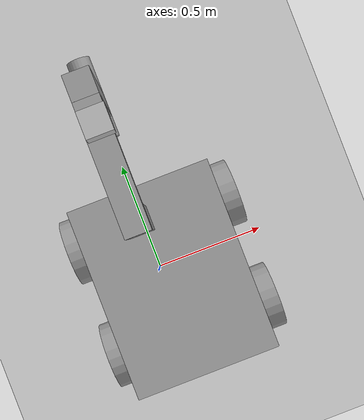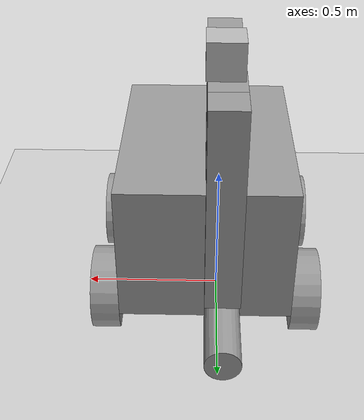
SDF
<?xml version="1.0" ?>
<!--
  You can echo lidar messages using:
    gz topic -e -t /lidar
-->
<sdf version="1.7">
  <world name="diff_drive_robot_world">
    <physics name="1ms" type="ignored">
      <max_step_size>0.001</max_step_size>
      <real_time_factor>1.0</real_time_factor>
    </physics>
    <plugin
      filename="gz-sim-physics-system"
      name="gz::sim::systems::Physics">
    </plugin>
    <plugin
      filename="gz-sim-sensors-system"
      name="gz::sim::systems::Sensors">
      <render_engine>ogre2</render_engine>
    </plugin>
    <plugin
      filename="gz-sim-scene-broadcaster-system"
      name="gz::sim::systems::SceneBroadcaster">
    </plugin>

    <gui fullscreen="0">

      <!-- 3D scene -->
      <plugin filename="MinimalScene" name="3D View">
        <gz-gui>
          <title>3D View</title>
          <property type="bool" key="showTitleBar">false</property>
          <property type="string" key="state">docked</property>
        </gz-gui>

        <engine>ogre2</engine>
        <scene>scene</scene>
        <ambient_light>0.4 0.4 0.4</ambient_light>
        <background_color>0.8 0.8 0.8</background_color>
        <camera_pose>-6 0 6 0 0.5 0</camera_pose>
      </plugin>

      <!-- Plugins that add functionality to the scene -->
      <plugin filename="EntityContextMenuPlugin" name="Entity context menu">
        <gz-gui>
          <property key="state" type="string">floating</property>
          <property key="width" type="double">5</property>
          <property key="height" type="double">5</property>
          <property key="showTitleBar" type="bool">false</property>
        </gz-gui>
      </plugin>
      <plugin filename="GzSceneManager" name="Scene Manager">
        <gz-gui>
          <property key="resizable" type="bool">false</property>
          <property key="width" type="double">5</property>
          <property key="height" type="double">5</property>
          <property key="state" type="string">floating</property>
          <property key="showTitleBar" type="bool">false</property>
        </gz-gui>
      </plugin>
      <plugin filename="InteractiveViewControl" name="Interactive view control">
        <gz-gui>
          <property key="resizable" type="bool">false</property>
          <property key="width" type="double">5</property>
          <property key="height" type="double">5</property>
          <property key="state" type="string">floating</property>
          <property key="showTitleBar" type="bool">false</property>
        </gz-gui>
      </plugin>
      <plugin filename="CameraTracking" name="Camera Tracking">
        <gz-gui>
          <property key="resizable" type="bool">false</property>
          <property key="width" type="double">5</property>
          <property key="height" type="double">5</property>
          <property key="state" type="string">floating</property>
          <property key="showTitleBar" type="bool">false</property>
        </gz-gui>
      </plugin>
      <!-- World control -->
      <plugin filename="WorldControl" name="World control">
        <gz-gui>
          <title>World control</title>
          <property type="bool" key="showTitleBar">false</property>
          <property type="bool" key="resizable">false</property>
          <property type="double" key="height">72</property>
          <property type="double" key="z">1</property>

          <property type="string" key="state">floating</property>
          <anchors target="3D View">
            <line own="left" target="left"/>
            <line own="bottom" target="bottom"/>
          </anchors>
        </gz-gui>

        <play_pause>true</play_pause>
        <step>true</step>
        <start_paused>true</start_paused>
        <use_event>true</use_event>

      </plugin>

      <!-- World statistics -->
      <plugin filename="WorldStats" name="World stats">
        <gz-gui>
          <title>World stats</title>
          <property type="bool" key="showTitleBar">false</property>
          <property type="bool" key="resizable">false</property>
          <property type="double" key="height">110</property>
          <property type="double" key="width">290</property>
          <property type="double" key="z">1</property>

          <property type="string" key="state">floating</property>
          <anchors target="3D View">
            <line own="right" target="right"/>
            <line own="bottom" target="bottom"/>
          </anchors>
        </gz-gui>

        <sim_time>true</sim_time>
        <real_time>true</real_time>
        <real_time_factor>true</real_time_factor>
        <iterations>true</iterations>
      </plugin>

      <!-- Inspector -->
      <plugin filename="ComponentInspector" name="Component inspector">
        <gz-gui>
          <property type="string" key="state">docked</property>
        </gz-gui>
      </plugin>

      <!-- Entity tree -->
      <plugin filename="EntityTree" name="Entity tree">
        <gz-gui>
          <property type="string" key="state">docked</property>
        </gz-gui>
      </plugin>
    </gui>

    <light type="directional" name="sun">
      <cast_shadows>true</cast_shadows>
      <pose>0 0 10 0 0 0</pose>
      <diffuse>0.8 0.8 0.8 1</diffuse>
      <specular>0.2 0.2 0.2 1</specular>
      <attenuation>
        <range>1000</range>
        <constant>0.9</constant>
        <linear>0.01</linear>
        <quadratic>0.001</quadratic>
      </attenuation>
      <direction>-0.5 0.1 -0.9</direction>
    </light>

    <model name="ground_plane">
      <static>true</static>
      <link name="link">
        <collision name="collision">
          <geometry>
            <box>
              <size>20 20 0.1</size>
            </box>
          </geometry>
        </collision>
        <visual name="visual">
          <geometry>
            <box>
              <size>20 20 0.1</size>
            </box>
          </geometry>
          <material>
            <ambient>0.8 0.8 0.8 1</ambient>
            <diffuse>0.8 0.8 0.8 1</diffuse>
            <specular>0.8 0.8 0.8 1</specular>
          </material>
        </visual>
      </link>
    </model>

    <model name='diff_drive_robot_complete'>
      <link name='link_0'>
        <inertial>
          <mass>2</mass>
          <inertia>
            <ixx>0.148333</ixx>
            <ixy>0</ixy>
            <ixz>0</ixz>
            <iyy>0.101667</iyy>
            <iyz>0</iyz>
            <izz>0.166667</izz>
          </inertia>
          <pose>0 0 0 0 -0 0</pose>
        </inertial>
        <pose>0 0 0.39 0 -0 0</pose>
        <gravity>1</gravity>
        <self_collide>0</self_collide>
        <kinematic>0</kinematic>
        <enable_wind>0</enable_wind>
        <visual name='visual'>
          <pose>0 0 0 0 -0 0</pose>
          <geometry>
            <box>
              <size>0.6 0.8 0.5</size>
            </box>
          </geometry>
          <material>
            <lighting>1</lighting>
            <script>
              <uri>file://media/materials/scripts/gazebo.material</uri>
              <name>Gazebo/Grey</name>
            </script>
            <shader type='pixel'>
              <normal_map>__default__</normal_map>
            </shader>
            <ambient>0.3 0.3 0.3 1</ambient>
            <diffuse>0.7 0.7 0.7 1</diffuse>
            <specular>0.01 0.01 0.01 1</specular>
            <emissive>0 0 0 1</emissive>
          </material>
          <transparency>0</transparency>
          <cast_shadows>1</cast_shadows>
        </visual>
        <collision name='collision'>
          <laser_retro>0</laser_retro>
          <max_contacts>10</max_contacts>
          <pose>0 0 0 0 -0 0</pose>
          <geometry>
            <box>
              <size>0.6 0.8 0.5</size>
            </box>
          </geometry>
          <surface>
            <friction>
              <ode>
                <mu>1</mu>
                <mu2>1</mu2>
                <fdir1>0 0 0</fdir1>
                <slip1>0</slip1>
                <slip2>0</slip2>
              </ode>
              <torsional>
                <coefficient>1</coefficient>
                <patch_radius>0</patch_radius>
                <surface_radius>0</surface_radius>
                <use_patch_radius>1</use_patch_radius>
                <ode>
                  <slip>0</slip>
                </ode>
              </torsional>
            </friction>
            <bounce>
              <restitution_coefficient>0</restitution_coefficient>
              <threshold>1e+06</threshold>
            </bounce>
            <contact>
              <collide_without_contact>0</collide_without_contact>
              <collide_without_contact_bitmask>1</collide_without_contact_bitmask>
              <collide_bitmask>1</collide_bitmask>
              <ode>
                <soft_cfm>0</soft_cfm>
                <soft_erp>0.2</soft_erp>
                <kp>1e+13</kp>
                <kd>1</kd>
                <max_vel>0.01</max_vel>
                <min_depth>0</min_depth>
              </ode>
              <bullet>
                <split_impulse>1</split_impulse>
                <split_impulse_penetration_threshold>-0.01</split_impulse_penetration_threshold>
                <soft_cfm>0</soft_cfm>
                <soft_erp>0.2</soft_erp>
                <kp>1e+13</kp>
                <kd>1</kd>
              </bullet>
            </contact>
          </surface>
        </collision>
      </link>
      <link name='link_0_0'>
        <inertial>
          <mass>1</mass>
          <inertia>
            <ixx>0.166667</ixx>
            <ixy>0</ixy>
            <ixz>0</ixz>
            <iyy>0.166667</iyy>
            <iyz>0</iyz>
            <izz>0.166667</izz>
          </inertia>
          <pose>0 0 0 0 -0 0</pose>
        </inertial>
        <pose>-0.044754 0.260325 0.84 0 0 -0.000943</pose>
        <gravity>1</gravity>
        <self_collide>0</self_collide>
        <kinematic>0</kinematic>
        <enable_wind>0</enable_wind>
        <visual name='visual'>
          <pose>0 0 0 0 -0 0</pose>
          <geometry>
            <box>
              <size>0.1 0.1 0.4</size>
            </box>
          </geometry>
          <material>
            <lighting>1</lighting>
            <script>
              <uri>file://media/materials/scripts/gazebo.material</uri>
              <name>Gazebo/Grey</name>
            </script>
            <shader type='pixel'>
              <normal_map>__default__</normal_map>
            </shader>
            <ambient>0.3 0.3 0.3 1</ambient>
            <diffuse>0.7 0.7 0.7 1</diffuse>
            <specular>0.01 0.01 0.01 1</specular>
            <emissive>0 0 0 1</emissive>
          </material>
          <transparency>0</transparency>
          <cast_shadows>1</cast_shadows>
        </visual>
        <collision name='collision'>
          <laser_retro>0</laser_retro>
          <max_contacts>10</max_contacts>
          <pose>0 0 0 0 -0 0</pose>
          <geometry>
            <box>
              <size>0.1 0.1 0.4</size>
            </box>
          </geometry>
          <surface>
            <friction>
              <ode>
                <mu>1</mu>
                <mu2>1</mu2>
                <fdir1>0 0 0</fdir1>
                <slip1>0</slip1>
                <slip2>0</slip2>
              </ode>
              <torsional>
                <coefficient>1</coefficient>
                <patch_radius>0</patch_radius>
                <surface_radius>0</surface_radius>
                <use_patch_radius>1</use_patch_radius>
                <ode>
                  <slip>0</slip>
                </ode>
              </torsional>
            </friction>
            <bounce>
              <restitution_coefficient>0</restitution_coefficient>
              <threshold>1e+06</threshold>
            </bounce>
            <contact>
              <collide_without_contact>0</collide_without_contact>
              <collide_without_contact_bitmask>1</collide_without_contact_bitmask>
              <collide_bitmask>1</collide_bitmask>
              <ode>
                <soft_cfm>0</soft_cfm>
                <soft_erp>0.2</soft_erp>
                <kp>1e+13</kp>
                <kd>1</kd>
                <max_vel>0.01</max_vel>
                <min_depth>0</min_depth>
              </ode>
              <bullet>
                <split_impulse>1</split_impulse>
                <split_impulse_penetration_threshold>-0.01</split_impulse_penetration_threshold>
                <soft_cfm>0</soft_cfm>
                <soft_erp>0.2</soft_erp>
                <kp>1e+13</kp>
                <kd>1</kd>
              </bullet>
            </contact>
          </surface>
        </collision>
      </link>
      <link name='link_0_0_clone'>
        <inertial>
          <mass>1</mass>
          <inertia>
            <ixx>0.166667</ixx>
            <ixy>0</ixy>
            <ixz>0</ixz>
            <iyy>0.166667</iyy>
            <iyz>0</iyz>
            <izz>0.166667</izz>
          </inertia>
          <pose>0 0 0 0 -0 0</pose>
        </inertial>
        <pose>-0.04433 0.460377 1.09002 1.5707 -0 0</pose>
        <gravity>1</gravity>
        <self_collide>0</self_collide>
        <kinematic>0</kinematic>
        <enable_wind>0</enable_wind>
        <visual name='visual_0'>
          <pose>0 0 0 0 -0 0</pose>
          <geometry>
            <box>
              <size>0.1 0.1 0.5</size>
            </box>
          </geometry>
          <material>
            <lighting>1</lighting>
            <script>
              <uri>file://media/materials/scripts/gazebo.material</uri>
              <name>Gazebo/Grey</name>
            </script>
            <shader type='pixel'>
              <normal_map>__default__</normal_map>
            </shader>
            <ambient>0.3 0.3 0.3 1</ambient>
            <diffuse>0.7 0.7 0.7 1</diffuse>
            <specular>0.01 0.01 0.01 1</specular>
            <emissive>0 0 0 1</emissive>
          </material>
          <transparency>0</transparency>
          <cast_shadows>1</cast_shadows>
        </visual>
        <collision name='collision'>
          <laser_retro>0</laser_retro>
          <max_contacts>10</max_contacts>
          <pose>0 0 0 0 -0 0</pose>
          <geometry>
            <box>
              <size>0.1 0.1 0.5</size>
            </box>
          </geometry>
          <surface>
            <friction>
              <ode>
                <mu>1</mu>
                <mu2>1</mu2>
                <fdir1>0 0 0</fdir1>
                <slip1>0</slip1>
                <slip2>0</slip2>
              </ode>
              <torsional>
                <coefficient>1</coefficient>
                <patch_radius>0</patch_radius>
                <surface_radius>0</surface_radius>
                <use_patch_radius>1</use_patch_radius>
                <ode>
                  <slip>0</slip>
                </ode>
              </torsional>
            </friction>
            <bounce>
              <restitution_coefficient>0</restitution_coefficient>
              <threshold>1e+06</threshold>
            </bounce>
            <contact>
              <collide_without_contact>0</collide_without_contact>
              <collide_without_contact_bitmask>1</collide_without_contact_bitmask>
              <collide_bitmask>1</collide_bitmask>
              <ode>
                <soft_cfm>0</soft_cfm>
                <soft_erp>0.2</soft_erp>
                <kp>1e+13</kp>
                <kd>1</kd>
                <max_vel>0.01</max_vel>
                <min_depth>0</min_depth>
              </ode>
              <bullet>
                <split_impulse>1</split_impulse>
                <split_impulse_penetration_threshold>-0.01</split_impulse_penetration_threshold>
                <soft_cfm>0</soft_cfm>
                <soft_erp>0.2</soft_erp>
                <kp>1e+13</kp>
                <kd>1</kd>
              </bullet>
            </contact>
          </surface>
        </collision>
      </link>
      <link name='link_1'>
        <inertial>
          <mass>1</mass>
          <inertia>
            <ixx>0.166667</ixx>
            <ixy>0</ixy>
            <ixz>0</ixz>
            <iyy>0.166667</iyy>
            <iyz>0</iyz>
            <izz>0.166667</izz>
          </inertia>
          <pose>0 0 0 0 -0 0</pose>
        </inertial>
        <pose>-0.044283 0.760429 0.840048 0 0 -0.000943</pose>
        <gravity>1</gravity>
        <self_collide>0</self_collide>
        <kinematic>0</kinematic>
        <enable_wind>0</enable_wind>
        <visual name='visual'>
          <pose>0 0 0 0 -0 0</pose>
          <geometry>
            <box>
              <size>0.1 0.1 0.6</size>
            </box>
          </geometry>
          <material>
            <lighting>1</lighting>
            <script>
              <uri>file://media/materials/scripts/gazebo.material</uri>
              <name>Gazebo/Grey</name>
            </script>
            <shader type='pixel'>
              <normal_map>__default__</normal_map>
            </shader>
            <ambient>0.3 0.3 0.3 1</ambient>
            <diffuse>0.7 0.7 0.7 1</diffuse>
            <specular>0.01 0.01 0.01 1</specular>
            <emissive>0 0 0 1</emissive>
          </material>
          <transparency>0</transparency>
          <cast_shadows>1</cast_shadows>
        </visual>
        <collision name='collision'>
          <laser_retro>0</laser_retro>
          <max_contacts>10</max_contacts>
          <pose>0 0 0 0 -0 0</pose>
          <geometry>
            <box>
              <size>0.1 0.1 0.6</size>
            </box>
          </geometry>
          <surface>
            <friction>
              <ode>
                <mu>1</mu>
                <mu2>1</mu2>
                <fdir1>0 0 0</fdir1>
                <slip1>0</slip1>
                <slip2>0</slip2>
              </ode>
              <torsional>
                <coefficient>1</coefficient>
                <patch_radius>0</patch_radius>
                <surface_radius>0</surface_radius>
                <use_patch_radius>1</use_patch_radius>
                <ode>
                  <slip>0</slip>
                </ode>
              </torsional>
            </friction>
            <bounce>
              <restitution_coefficient>0</restitution_coefficient>
              <threshold>1e+06</threshold>
            </bounce>
            <contact>
              <collide_without_contact>0</collide_without_contact>
              <collide_without_contact_bitmask>1</collide_without_contact_bitmask>
              <collide_bitmask>1</collide_bitmask>
              <ode>
                <soft_cfm>0</soft_cfm>
                <soft_erp>0.2</soft_erp>
                <kp>1e+13</kp>
                <kd>1</kd>
                <max_vel>0.01</max_vel>
                <min_depth>0</min_depth>
              </ode>
              <bullet>
                <split_impulse>1</split_impulse>
                <split_impulse_penetration_threshold>-0.01</split_impulse_penetration_threshold>
                <soft_cfm>0</soft_cfm>
                <soft_erp>0.2</soft_erp>
                <kp>1e+13</kp>
                <kd>1</kd>
              </bullet>
            </contact>
          </surface>
        </collision>
      </link>
      <link name='link_1_clone'>
        <inertial>
          <mass>1</mass>
          <inertia>
            <ixx>0.145833</ixx>
            <ixy>0</ixy>
            <ixz>0</ixz>
            <iyy>0.145833</iyy>
            <iyz>0</iyz>
            <izz>0.125</izz>
          </inertia>
          <pose>0 0 0 0 -0 0</pose>
        </inertial>
        <pose>0.350029 -0.249995 0.14 1.5707 0 1.5707</pose>
        <gravity>1</gravity>
        <self_collide>0</self_collide>
        <kinematic>0</kinematic>
        <enable_wind>0</enable_wind>
        <visual name='visual'>
          <pose>0 0 0 0 -0 0</pose>
          <geometry>
            <cylinder>
              <radius>0.15</radius>
              <length>0.1</length>
            </cylinder>
          </geometry>
          <material>
            <lighting>1</lighting>
            <script>
              <uri>file://media/materials/scripts/gazebo.material</uri>
              <name>Gazebo/Grey</name>
            </script>
            <shader type='pixel'>
              <normal_map>__default__</normal_map>
            </shader>
            <ambient>0.3 0.3 0.3 1</ambient>
            <diffuse>0.7 0.7 0.7 1</diffuse>
            <specular>0.01 0.01 0.01 1</specular>
            <emissive>0 0 0 1</emissive>
          </material>
          <transparency>0</transparency>
          <cast_shadows>1</cast_shadows>
        </visual>
        <collision name='collision'>
          <laser_retro>0</laser_retro>
          <max_contacts>10</max_contacts>
          <pose>0 0 0 0 -0 0</pose>
          <geometry>
            <cylinder>
              <radius>0.15</radius>
              <length>0.1</length>
            </cylinder>
          </geometry>
          <surface>
            <friction>
              <ode>
                <mu>1</mu>
                <mu2>1</mu2>
                <fdir1>0 0 0</fdir1>
                <slip1>0</slip1>
                <slip2>0</slip2>
              </ode>
              <torsional>
                <coefficient>1</coefficient>
                <patch_radius>0</patch_radius>
                <surface_radius>0</surface_radius>
                <use_patch_radius>1</use_patch_radius>
                <ode>
                  <slip>0</slip>
                </ode>
              </torsional>
            </friction>
            <bounce>
              <restitution_coefficient>0</restitution_coefficient>
              <threshold>1e+06</threshold>
            </bounce>
            <contact>
              <collide_without_contact>0</collide_without_contact>
              <collide_without_contact_bitmask>1</collide_without_contact_bitmask>
              <collide_bitmask>1</collide_bitmask>
              <ode>
                <soft_cfm>0</soft_cfm>
                <soft_erp>0.2</soft_erp>
                <kp>1e+13</kp>
                <kd>1</kd>
                <max_vel>0.01</max_vel>
                <min_depth>0</min_depth>
              </ode>
              <bullet>
                <split_impulse>1</split_impulse>
                <split_impulse_penetration_threshold>-0.01</split_impulse_penetration_threshold>
                <soft_cfm>0</soft_cfm>
                <soft_erp>0.2</soft_erp>
                <kp>1e+13</kp>
                <kd>1</kd>
              </bullet>
            </contact>
          </surface>
        </collision>
      </link>
      <link name='link_1_clone_clone'>
        <inertial>
          <mass>1</mass>
          <inertia>
            <ixx>0.145833</ixx>
            <ixy>0</ixy>
            <ixz>0</ixz>
            <iyy>0.145833</iyy>
            <iyz>0</iyz>
            <izz>0.125</izz>
          </inertia>
          <pose>0 0 0 0 -0 0</pose>
        </inertial>
        <pose>0.350029 0.249995 0.14 1.5707 0 1.5707</pose>
        <gravity>1</gravity>
        <self_collide>0</self_collide>
        <kinematic>0</kinematic>
        <enable_wind>0</enable_wind>
        <visual name='visual'>
          <pose>0 0 0 0 -0 0</pose>
          <geometry>
            <cylinder>
              <radius>0.15</radius>
              <length>0.1</length>
            </cylinder>
          </geometry>
          <material>
            <lighting>1</lighting>
            <script>
              <uri>file://media/materials/scripts/gazebo.material</uri>
              <name>Gazebo/Grey</name>
            </script>
            <shader type='pixel'>
              <normal_map>__default__</normal_map>
            </shader>
            <ambient>0.3 0.3 0.3 1</ambient>
            <diffuse>0.7 0.7 0.7 1</diffuse>
            <specular>0.01 0.01 0.01 1</specular>
            <emissive>0 0 0 1</emissive>
          </material>
          <transparency>0</transparency>
          <cast_shadows>1</cast_shadows>
        </visual>
        <collision name='collision'>
          <laser_retro>0</laser_retro>
          <max_contacts>10</max_contacts>
          <pose>0 0 0 0 -0 0</pose>
          <geometry>
            <cylinder>
              <radius>0.15</radius>
              <length>0.1</length>
            </cylinder>
          </geometry>
          <surface>
            <friction>
              <ode>
                <mu>1</mu>
                <mu2>1</mu2>
                <fdir1>0 0 0</fdir1>
                <slip1>0</slip1>
                <slip2>0</slip2>
              </ode>
              <torsional>
                <coefficient>1</coefficient>
                <patch_radius>0</patch_radius>
                <surface_radius>0</surface_radius>
                <use_patch_radius>1</use_patch_radius>
                <ode>
                  <slip>0</slip>
                </ode>
              </torsional>
            </friction>
            <bounce>
              <restitution_coefficient>0</restitution_coefficient>
              <threshold>1e+06</threshold>
            </bounce>
            <contact>
              <collide_without_contact>0</collide_without_contact>
              <collide_without_contact_bitmask>1</collide_without_contact_bitmask>
              <collide_bitmask>1</collide_bitmask>
              <ode>
                <soft_cfm>0</soft_cfm>
                <soft_erp>0.2</soft_erp>
                <kp>1e+13</kp>
                <kd>1</kd>
                <max_vel>0.01</max_vel>
                <min_depth>0</min_depth>
              </ode>
              <bullet>
                <split_impulse>1</split_impulse>
                <split_impulse_penetration_threshold>-0.01</split_impulse_penetration_threshold>
                <soft_cfm>0</soft_cfm>
                <soft_erp>0.2</soft_erp>
                <kp>1e+13</kp>
                <kd>1</kd>
              </bullet>
            </contact>
          </surface>
        </collision>
      </link>
      <link name='link_1_clone_clone_0'>
        <inertial>
          <mass>1</mass>
          <inertia>
            <ixx>0.145833</ixx>
            <ixy>0</ixy>
            <ixz>0</ixz>
            <iyy>0.145833</iyy>
            <iyz>0</iyz>
            <izz>0.125</izz>
          </inertia>
          <pose>0 0 0 0 -0 0</pose>
        </inertial>
        <pose>-0.350029 0.249995 0.14 1.5707 0 1.5707</pose>
        <gravity>1</gravity>
        <self_collide>0</self_collide>
        <kinematic>0</kinematic>
        <enable_wind>0</enable_wind>
        <visual name='visual'>
          <pose>0 0 0 0 -0 0</pose>
          <geometry>
            <cylinder>
              <radius>0.15</radius>
              <length>0.1</length>
            </cylinder>
          </geometry>
          <material>
            <lighting>1</lighting>
            <script>
              <uri>file://media/materials/scripts/gazebo.material</uri>
              <name>Gazebo/Grey</name>
            </script>
            <shader type='pixel'>
              <normal_map>__default__</normal_map>
            </shader>
            <ambient>0.3 0.3 0.3 1</ambient>
            <diffuse>0.7 0.7 0.7 1</diffuse>
            <specular>0.01 0.01 0.01 1</specular>
            <emissive>0 0 0 1</emissive>
          </material>
          <transparency>0</transparency>
          <cast_shadows>1</cast_shadows>
        </visual>
        <collision name='collision'>
          <laser_retro>0</laser_retro>
          <max_contacts>10</max_contacts>
          <pose>0 0 0 0 -0 0</pose>
          <geometry>
            <cylinder>
              <radius>0.15</radius>
              <length>0.1</length>
            </cylinder>
          </geometry>
          <surface>
            <friction>
              <ode>
                <mu>1</mu>
                <mu2>1</mu2>
                <fdir1>0 0 0</fdir1>
                <slip1>0</slip1>
                <slip2>0</slip2>
              </ode>
              <torsional>
                <coefficient>1</coefficient>
                <patch_radius>0</patch_radius>
                <surface_radius>0</surface_radius>
                <use_patch_radius>1</use_patch_radius>
                <ode>
                  <slip>0</slip>
                </ode>
              </torsional>
            </friction>
            <bounce>
              <restitution_coefficient>0</restitution_coefficient>
              <threshold>1e+06</threshold>
            </bounce>
            <contact>
              <collide_without_contact>0</collide_without_contact>
              <collide_without_contact_bitmask>1</collide_without_contact_bitmask>
              <collide_bitmask>1</collide_bitmask>
              <ode>
                <soft_cfm>0</soft_cfm>
                <soft_erp>0.2</soft_erp>
                <kp>1e+13</kp>
                <kd>1</kd>
                <max_vel>0.01</max_vel>
                <min_depth>0</min_depth>
              </ode>
              <bullet>
                <split_impulse>1</split_impulse>
                <split_impulse_penetration_threshold>-0.01</split_impulse_penetration_threshold>
                <soft_cfm>0</soft_cfm>
                <soft_erp>0.2</soft_erp>
                <kp>1e+13</kp>
                <kd>1</kd>
              </bullet>
            </contact>
          </surface>
        </collision>
      </link>
      <link name='link_1_clone_clone_1'>
        <inertial>
          <mass>1</mass>
          <inertia>
            <ixx>0.145833</ixx>
            <ixy>0</ixy>
            <ixz>0</ixz>
            <iyy>0.145833</iyy>
            <iyz>0</iyz>
            <izz>0.125</izz>
          </inertia>
          <pose>0 0 0 0 -0 0</pose>
        </inertial>
        <pose>-0.350029 -0.249995 0.14 1.5707 0 1.5707</pose>
        <gravity>1</gravity>
        <self_collide>0</self_collide>
        <kinematic>0</kinematic>
        <enable_wind>0</enable_wind>
        <visual name='visual'>
          <pose>0 0 0 0 -0 0</pose>
          <geometry>
            <cylinder>
              <radius>0.15</radius>
              <length>0.1</length>
            </cylinder>
          </geometry>
          <material>
            <lighting>1</lighting>
            <script>
              <uri>file://media/materials/scripts/gazebo.material</uri>
              <name>Gazebo/Grey</name>
            </script>
            <shader type='pixel'>
              <normal_map>__default__</normal_map>
            </shader>
            <ambient>0.3 0.3 0.3 1</ambient>
            <diffuse>0.7 0.7 0.7 1</diffuse>
            <specular>0.01 0.01 0.01 1</specular>
            <emissive>0 0 0 1</emissive>
          </material>
          <transparency>0</transparency>
          <cast_shadows>1</cast_shadows>
        </visual>
        <collision name='collision'>
          <laser_retro>0</laser_retro>
          <max_contacts>10</max_contacts>
          <pose>0 0 0 0 -0 0</pose>
          <geometry>
            <cylinder>
              <radius>0.15</radius>
              <length>0.1</length>
            </cylinder>
          </geometry>
          <surface>
            <friction>
              <ode>
                <mu>1</mu>
                <mu2>1</mu2>
                <fdir1>0 0 0</fdir1>
                <slip1>0</slip1>
                <slip2>0</slip2>
              </ode>
              <torsional>
                <coefficient>1</coefficient>
                <patch_radius>0</patch_radius>
                <surface_radius>0</surface_radius>
                <use_patch_radius>1</use_patch_radius>
                <ode>
                  <slip>0</slip>
                </ode>
              </torsional>
            </friction>
            <bounce>
              <restitution_coefficient>0</restitution_coefficient>
              <threshold>1e+06</threshold>
            </bounce>
            <contact>
              <collide_without_contact>0</collide_without_contact>
              <collide_without_contact_bitmask>1</collide_without_contact_bitmask>
              <collide_bitmask>1</collide_bitmask>
              <ode>
                <soft_cfm>0</soft_cfm>
                <soft_erp>0.2</soft_erp>
                <kp>1e+13</kp>
                <kd>1</kd>
                <max_vel>0.01</max_vel>
                <min_depth>0</min_depth>
              </ode>
              <bullet>
                <split_impulse>1</split_impulse>
                <split_impulse_penetration_threshold>-0.01</split_impulse_penetration_threshold>
                <soft_cfm>0</soft_cfm>
                <soft_erp>0.2</soft_erp>
                <kp>1e+13</kp>
                <kd>1</kd>
              </bullet>
            </contact>
          </surface>
        </collision>
      </link>
      <link name='link_2'>
        <inertial>
          <mass>1</mass>
          <inertia>
            <ixx>0.145833</ixx>
            <ixy>0</ixy>
            <ixz>0</ixz>
            <iyy>0.145833</iyy>
            <iyz>0</iyz>
            <izz>0.125</izz>
          </inertia>
          <pose>0 0 0 0 -0 0</pose>
        </inertial>
        <pose>-0.044075 0.805382 0.489994 1.5707 -0 0</pose>
        <gravity>1</gravity>
        <self_collide>0</self_collide>
        <kinematic>0</kinematic>
        <enable_wind>0</enable_wind>
        <visual name='visual'>
          <pose>0 0 0 0 -0 0</pose>
          <geometry>
            <cylinder>
              <radius>0.05</radius>
              <length>0.35</length>
            </cylinder>
          </geometry>
          <material>
            <lighting>1</lighting>
            <script>
              <uri>file://media/materials/scripts/gazebo.material</uri>
              <name>Gazebo/Grey</name>
            </script>
            <shader type='pixel'>
              <normal_map>__default__</normal_map>
            </shader>
            <ambient>0.3 0.3 0.3 1</ambient>
            <diffuse>0.7 0.7 0.7 1</diffuse>
            <specular>0.01 0.01 0.01 1</specular>
            <emissive>0 0 0 1</emissive>
          </material>
          <transparency>0</transparency>
          <cast_shadows>1</cast_shadows>
        </visual>
        <collision name='collision'>
          <laser_retro>0</laser_retro>
          <max_contacts>10</max_contacts>
          <pose>0 0 0 0 -0 0</pose>
          <geometry>
            <cylinder>
              <radius>0.05</radius>
              <length>0.35</length>
            </cylinder>
          </geometry>
          <surface>
            <friction>
              <ode>
                <mu>1</mu>
                <mu2>1</mu2>
                <fdir1>0 0 0</fdir1>
                <slip1>0</slip1>
                <slip2>0</slip2>
              </ode>
              <torsional>
                <coefficient>1</coefficient>
                <patch_radius>0</patch_radius>
                <surface_radius>0</surface_radius>
                <use_patch_radius>1</use_patch_radius>
                <ode>
                  <slip>0</slip>
                </ode>
              </torsional>
            </friction>
            <bounce>
              <restitution_coefficient>0</restitution_coefficient>
              <threshold>1e+06</threshold>
            </bounce>
            <contact>
              <collide_without_contact>0</collide_without_contact>
              <collide_without_contact_bitmask>1</collide_without_contact_bitmask>
              <collide_bitmask>1</collide_bitmask>
              <ode>
                <soft_cfm>0</soft_cfm>
                <soft_erp>0.2</soft_erp>
                <kp>1e+13</kp>
                <kd>1</kd>
                <max_vel>0.01</max_vel>
                <min_depth>0</min_depth>
              </ode>
              <bullet>
                <split_impulse>1</split_impulse>
                <split_impulse_penetration_threshold>-0.01</split_impulse_penetration_threshold>
                <soft_cfm>0</soft_cfm>
                <soft_erp>0.2</soft_erp>
                <kp>1e+13</kp>
                <kd>1</kd>
              </bullet>
            </contact>
          </surface>
        </collision>
      </link>
      <model name='depth_camera'>
        <link name='link'>
          <pose>0 0 0.05 0 -0 0</pose>
          <inertial>
            <mass>0.1</mass>
            <inertia>
              <ixx>0.000166667</ixx>
              <iyy>0.000166667</iyy>
              <izz>0.000166667</izz>
              <ixy>0</ixy>
              <ixz>0</ixz>
              <iyz>0</iyz>
            </inertia>
            <pose>0 0 0 0 -0 0</pose>
          </inertial>
          <collision name='collision'>
            <geometry>
              <box>
                <size>0.1 0.1 0.1</size>
              </box>
            </geometry>
            <max_contacts>10</max_contacts>
            <surface>
              <contact>
                <ode/>
              </contact>
              <bounce/>
              <friction>
                <torsional>
                  <ode/>
                </torsional>
                <ode/>
              </friction>
            </surface>
          </collision>
          <visual name='visual'>
            <geometry>
              <box>
                <size>0.1 0.1 0.1</size>
              </box>
            </geometry>
          </visual>
          <sensor name='camera' type='depth'>
            <camera>
              <horizontal_fov>1.047</horizontal_fov>
              <image>
                <width>320</width>
                <height>240</height>
              </image>
              <clip>
                <near>0.1</near>
                <far>100</far>
              </clip>
            </camera>
            <always_on>1</always_on>
            <update_rate>30</update_rate>
            <visualize>1</visualize>
          </sensor>
          <self_collide>0</self_collide>
          <enable_wind>0</enable_wind>
          <kinematic>0</kinematic>
        </link>
        <pose>-0.038894 0.610703 1.14346 0 -0 0</pose>
      </model>
      <joint name='link_0_0_JOINT_2' type='fixed'>
        <parent>link_0_0</parent>
        <child>link_0_0_clone</child>
        <pose>0 0 0 0 -0 0</pose>
        <physics>
          <ode>
            <limit>
              <cfm>0</cfm>
              <erp>0.2</erp>
            </limit>
            <suspension>
              <cfm>0</cfm>
              <erp>0.2</erp>
            </suspension>
          </ode>
        </physics>
      </joint>
      <joint name='link_0_0_clone_JOINT_1' type='fixed'>
        <parent>link_0_0_clone</parent>
        <child>depth_camera::link</child>
        <pose>0 0 0 0 -0 0</pose>
        <physics>
          <ode>
            <limit>
              <cfm>0</cfm>
              <erp>0.2</erp>
            </limit>
            <suspension>
              <cfm>0</cfm>
              <erp>0.2</erp>
            </suspension>
          </ode>
        </physics>
      </joint>
      <joint name='link_0_0_clone_JOINT_4' type='revolute'>
        <parent>link_0_0_clone</parent>
        <child>link_1</child>
        <pose>0 0 0 0 -0 0</pose>
        <axis>
          <xyz>0 0 1</xyz>
          <limit>
            <lower>-1.79769e+308</lower>
            <upper>1.79769e+308</upper>
            <effort>-1</effort>
            <velocity>-1</velocity>
          </limit>
          <dynamics>
            <spring_reference>0</spring_reference>
            <spring_stiffness>0</spring_stiffness>
            <damping>0</damping>
            <friction>0</friction>
          </dynamics>
        </axis>
        <physics>
          <ode>
            <limit>
              <cfm>0</cfm>
              <erp>0.2</erp>
            </limit>
            <suspension>
              <cfm>0</cfm>
              <erp>0.2</erp>
            </suspension>
          </ode>
        </physics>
      </joint>
      <joint name='link_0_JOINT_0' type='revolute'>
        <parent>link_0</parent>
        <child>link_0_0</child>
        <pose>0 0 0 0 -0 0</pose>
        <axis>
          <xyz>0 0 1</xyz>
          <limit>
            <lower>-1.79769e+308</lower>
            <upper>1.79769e+308</upper>
            <effort>-1</effort>
            <velocity>-1</velocity>
          </limit>
          <dynamics>
            <spring_reference>0</spring_reference>
            <spring_stiffness>0</spring_stiffness>
            <damping>0</damping>
            <friction>0</friction>
          </dynamics>
        </axis>
        <physics>
          <ode>
            <limit>
              <cfm>0</cfm>
              <erp>0.2</erp>
            </limit>
            <suspension>
              <cfm>0</cfm>
              <erp>0.2</erp>
            </suspension>
          </ode>
        </physics>
      </joint>
      <joint name='link_0_JOINT_3' type='revolute'>
        <parent>link_0</parent>
        <child>link_1_clone</child>
        <pose>0 0 0 0 -0 0</pose>
        <axis>
          <xyz>0 0 1</xyz>
          <limit>
            <lower>-1.79769e+308</lower>
            <upper>1.79769e+308</upper>
            <effort>-1</effort>
            <velocity>-1</velocity>
          </limit>
          <dynamics>
            <spring_reference>0</spring_reference>
            <spring_stiffness>0</spring_stiffness>
            <damping>0</damping>
            <friction>0</friction>
          </dynamics>
        </axis>
        <physics>
          <ode>
            <limit>
              <cfm>0</cfm>
              <erp>0.2</erp>
            </limit>
            <suspension>
              <cfm>0</cfm>
              <erp>0.2</erp>
            </suspension>
          </ode>
        </physics>
      </joint>
      <joint name='link_0_JOINT_4' type='revolute'>
        <parent>link_0</parent>
        <child>link_1_clone_clone</child>
        <pose>0 0 0 0 -0 0</pose>
        <axis>
          <xyz>0 0 1</xyz>
          <limit>
            <lower>-1.79769e+308</lower>
            <upper>1.79769e+308</upper>
            <effort>-1</effort>
            <velocity>-1</velocity>
          </limit>
          <dynamics>
            <spring_reference>0</spring_reference>
            <spring_stiffness>0</spring_stiffness>
            <damping>0</damping>
            <friction>0</friction>
          </dynamics>
        </axis>
        <physics>
          <ode>
            <limit>
              <cfm>0</cfm>
              <erp>0.2</erp>
            </limit>
            <suspension>
              <cfm>0</cfm>
              <erp>0.2</erp>
            </suspension>
          </ode>
        </physics>
      </joint>
      <joint name='link_0_JOINT_5' type='revolute'>
        <parent>link_0</parent>
        <child>link_1_clone_clone_1</child>
        <pose>0 0 0 0 -0 0</pose>
        <axis>
          <xyz>0 0 1</xyz>
          <limit>
            <lower>-1.79769e+308</lower>
            <upper>1.79769e+308</upper>
            <effort>-1</effort>
            <velocity>-1</velocity>
          </limit>
          <dynamics>
            <spring_reference>0</spring_reference>
            <spring_stiffness>0</spring_stiffness>
            <damping>0</damping>
            <friction>0</friction>
          </dynamics>
        </axis>
        <physics>
          <ode>
            <limit>
              <cfm>0</cfm>
              <erp>0.2</erp>
            </limit>
            <suspension>
              <cfm>0</cfm>
              <erp>0.2</erp>
            </suspension>
          </ode>
        </physics>
      </joint>
      <joint name='link_0_JOINT_7' type='revolute'>
        <parent>link_0</parent>
        <child>link_1_clone_clone_0</child>
        <pose>0 0 0 0 -0 0</pose>
        <axis>
          <xyz>0 0 1</xyz>
          <limit>
            <lower>-1.79769e+308</lower>
            <upper>1.79769e+308</upper>
            <effort>-1</effort>
            <velocity>-1</velocity>
          </limit>
          <dynamics>
            <spring_reference>0</spring_reference>
            <spring_stiffness>0</spring_stiffness>
            <damping>0</damping>
            <friction>0</friction>
          </dynamics>
        </axis>
        <physics>
          <ode>
            <limit>
              <cfm>0</cfm>
              <erp>0.2</erp>
            </limit>
            <suspension>
              <cfm>0</cfm>
              <erp>0.2</erp>
            </suspension>
          </ode>
        </physics>
      </joint>
      <joint name='link_1_JOINT_5' type='revolute'>
        <parent>link_1</parent>
        <child>link_2</child>
        <pose>0 0 0 0 -0 0</pose>
        <axis>
          <xyz>0 1 0</xyz>
          <limit>
            <lower>-1.79769e+308</lower>
            <upper>1.79769e+308</upper>
            <effort>-1</effort>
            <velocity>-1</velocity>
          </limit>
          <dynamics>
            <spring_reference>0</spring_reference>
            <spring_stiffness>0</spring_stiffness>
            <damping>0</damping>
            <friction>0</friction>
          </dynamics>
        </axis>
        <physics>
          <ode>
            <limit>
              <cfm>0</cfm>
              <erp>0.2</erp>
            </limit>
            <suspension>
              <cfm>0</cfm>
              <erp>0.2</erp>
            </suspension>
          </ode>
        </physics>
      </joint>
      <static>0</static>
      <allow_auto_disable>1</allow_auto_disable>
      <pose>0.045181 -0.045148 0 0 -0 0</pose>
      <plugin
        filename="gz-sim-diff-drive-system"
        name="gz::sim::systems::DiffDrive">
        <left_joint>link_0_JOINT_7</left_joint>
        <right_joint>link_0_JOINT_4</right_joint>
        <wheel_separation>0.7</wheel_separation>
        <wheel_radius>0.15</wheel_radius>
        <odom_publish_frequency>1</odom_publish_frequency>
      </plugin>
    </model>

  </world>
</sdf>
